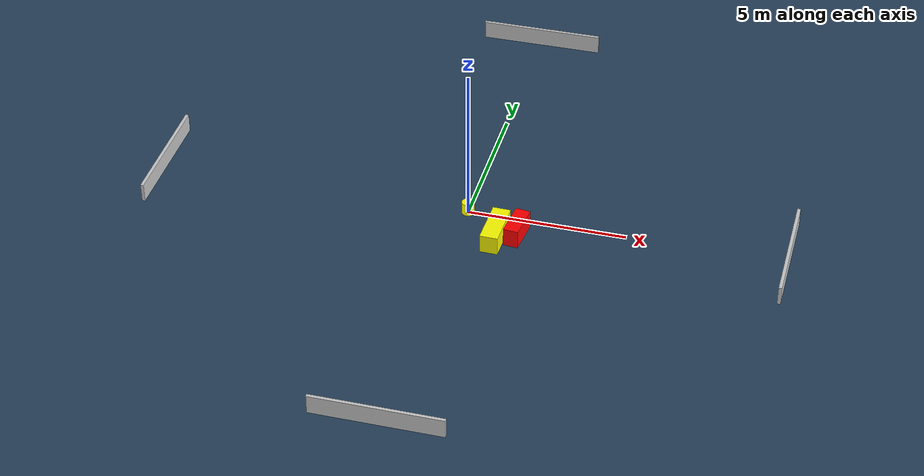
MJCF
<?xml version="1.0" ?>
<mujoco model="generated_environment">
  <option timestep="0.01" integrator="RK4" cone="elliptic"/>
  <default>
    <geom density="1"/>
  </default>
  <asset>
    <texture builtin="gradient" height="3072" name="skybox" rgb1="0.3 0.5 0.7" rgb2="0 0 0" type="skybox" width="512"/>
    <texture builtin="checker" height="300" name="groundplane" rgb1="0.2 0.3 0.4" rgb2="0.1 0.2 0.3" type="2d" width="300"/>
    <material name="groundplane" reflectance="0.2" texrepeat="5 5" texture="groundplane"/>
  </asset>
  <worldbody>
    <light dir="0 0 -1" directional="true" pos="0 0 1.5"/>
    <geom condim="3" friction="0.5 0.005 0.001" material="groundplane" name="floor" pos="0 0 0" size="0 0 0.05" type="plane"/>
    <body name="walls">
      <geom name="wall_1" condim="4" pos="-10.0 0.0 0.3" rgba="0.800000011920929 0.800000011920929 0.800000011920929 1.0" size="0.05 2.0 0.3" type="box"/>
      <geom name="wall_2" condim="4" pos="10.0 0.0 0.3" rgba="0.800000011920929 0.800000011920929 0.800000011920929 1.0" size="0.05 2.0 0.3" type="box"/>
      <geom name="wall_3" condim="4" pos="0.0 -10.0 0.3" rgba="0.800000011920929 0.800000011920929 0.800000011920929 1.0" size="2.0 0.05 0.3" type="box"/>
      <geom name="wall_4" condim="4" pos="0.0 10.0 0.3" rgba="0.800000011920929 0.800000011920929 0.800000011920929 1.0" size="2.0 0.05 0.3" type="box"/>
    </body>
    <body name="robot">
      <joint name="joint_x" type="slide" pos="0 0 0" axis="1 0 0"/>
      <joint name="joint_y" type="slide" pos="0 0 0" axis="0 1 0"/>
      <geom name="robot" type="cylinder" pos="0.0 0.0 0.2" size="0.2 0.2 0.0" mass="5.0" friction="1.0 0.005 0.0001" condim="4" rgba="1.0 1.0 0.0 1.0"/>
    </body>
    <body name="obstacle_1_movable">
      <geom name="obstacle_1_movable" condim="4" pos="1.1347399905739233 -1.070642812363802 0.3" euler="0 0 178.37680983459373" friction="0.0 0.005 0.001" rgba="1.0 1.0 0.0 1.0" size="0.28270959543487323 0.7548164800035639 0.3" type="box" mass="0.1"/>
      <joint type="free"/>
    </body>
    <body name="obstacle_2_static">
      <geom name="obstacle_2_static" condim="4" pos="1.738965047828268 -0.7760697309019972 0.3" euler="0 0 263.724434697687" friction="0.0 0.005 0.001" rgba="1.0 0.0 0.0 1.0" size="0.5671104260595295 0.2356848169286348 0.3" type="box"/>
    </body>
  </worldbody>
  <actuator>
    <motor name="actuator_x" joint="joint_x" gear="1" ctrlrange="-1 1"/>
    <motor name="actuator_y" joint="joint_y" gear="1" ctrlrange="-1 1"/>
  </actuator>
</mujoco>
